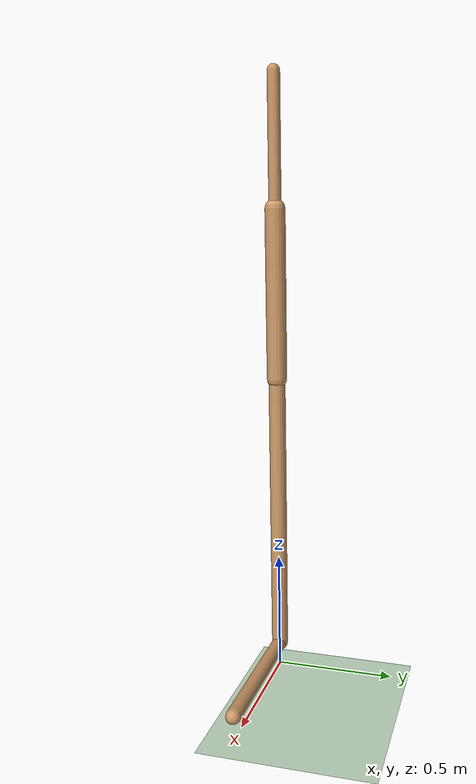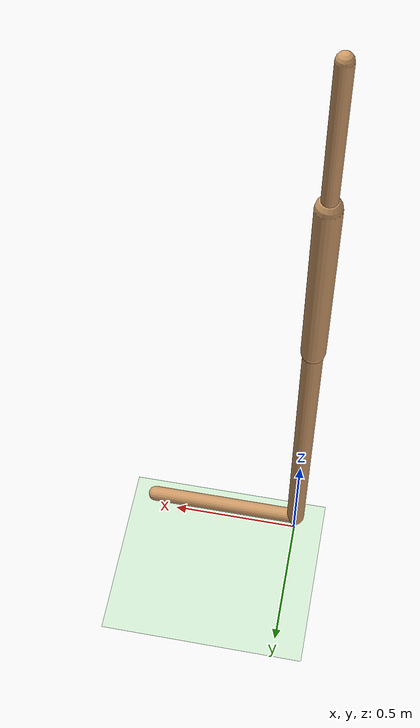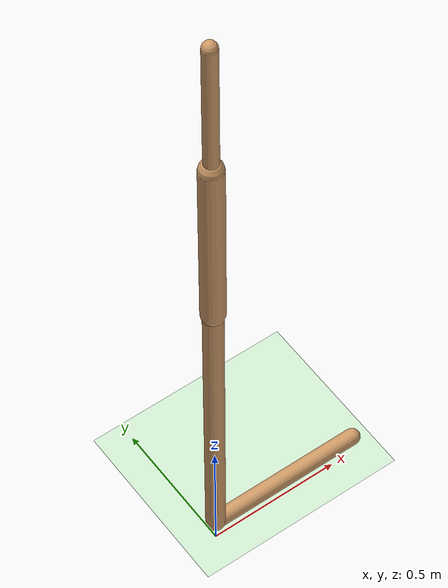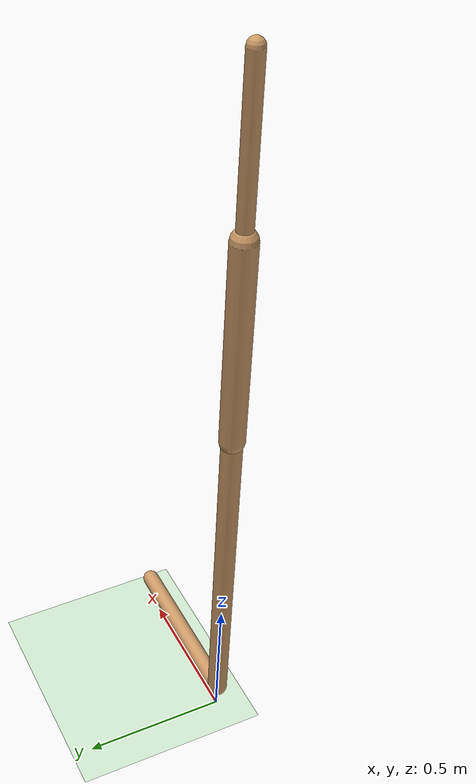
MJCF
<mujoco model="walker2d">
  <compiler angle="degree" inertiafromgeom="true" />
  <default>
    <joint armature="0.01" damping=".1" limited="true" />
    <geom conaffinity="0" condim="3" contype="1" density="1000" friction=".7 .1 .1" rgba="0.8 0.6 .4 1" />
  </default>
  <option integrator="RK4" timestep="0.002" />
  <worldbody>
    <light cutoff="100" diffuse="1 1 1" dir="-0 0 -1.3" directional="true" exponent="1" pos="0 0 1.3" specular=".1 .1 .1" />
    <geom conaffinity="1" condim="3" name="floor" pos="0 0 0" rgba="0.8 0.9 0.8 1" size="40 40 40" type="plane" material="MatPlane" />
    <body name="torso" pos="0 0 2.2475917398929597">
      <camera name="track" mode="trackcom" pos="0 -5 -1.25" xyaxes="1 0 0 0 0 1" />
      <joint armature="0" axis="1 0 0" damping="0" limited="false" name="rootx" pos="0 0 -1.25" stiffness="0" type="slide" />
      <joint armature="0" axis="0 0 1" damping="0" limited="false" name="rootz" pos="0 0 -1.25" ref="1.25" stiffness="0" type="slide" />
      <joint armature="0" axis="0 1 0" damping="0" limited="false" name="rooty" pos="0 0 0" stiffness="0" type="hinge" />
      <geom friction="0.9" name="torso_geom" size="0.025464992970228195 0.26182910799980164" type="capsule" />
      <body name="thigh" pos="0 0 -0.26182910799980164">
        <joint axis="0 -1 0" name="thigh_joint" pos="0 0 0" range="-150 0" type="hinge" />
        <site name="torso_thigh_site" pos="0 0 0" size="0.01" type="sphere" rgba="1 0 0 0.5" />
        <geom friction="0.9" pos="0 0 -0.3463514745235443" name="thigh_geom" size="0.041600026190280914 0.3463514745235443" type="capsule" />
        <body name="leg" pos="0 0 -1.2892327904701233">
          <joint axis="0 -1 0" name="leg_joint" pos="0 0 0.5965298414230347" range="-150 0" type="hinge" />
          <site name="thigh_leg_site" pos="0 0 0.25" size="0.01" type="sphere" rgba="1 0 0 0.5" />
          <geom friction="0.9" name="leg_geom" size="0.034702181816101074 0.5965298414230347" type="capsule" />
          <body name="foot" pos="0.5836220979690552 0 -0.6965298414230346">
            <joint axis="0 -1 0" name="foot_joint" pos="-0.5836220979690552 0 0.1" range="-45 45" type="hinge" />
            <site name="leg_foot_site" pos="-0.2 0 0.1" size="0.01" type="sphere" rgba="1 0 0 0.5" />
            <geom friction="0.9" pos="-0.2918110489845276 0 0.1" quat="0.70710678118654757 0 -0.70710678118654746 0" name="foot_geom" size="0.030295195057988167 0.2918110489845276" type="capsule" />
          </body>
        </body>
      </body>

      <body name="thigh_left" pos="0 0 -0.26182910799980164">
        <joint axis="0 -1 0" name="thigh_left_joint" pos="0 0 0" range="-150 0" type="hinge" />
        <site name="torso_thigh_left_site" pos="0 0 0" size="0.01" type="sphere" rgba="1 0 0 0.5" />
        <geom friction="0.9" name="thigh_left_geom" rgba=".7 .3 .6 1" size="0.041600026190280914 0.3463514745235443" pos="0 0 -0.3463514745235443" type="capsule" />
        <body name="leg_left" pos="0 0 -1.2892327904701233">
          <joint axis="0 -1 0" name="leg_left_joint" pos="0 0 0.5965298414230347" range="-150 0" type="hinge" />
          <site name="thigh_leg_left_site" pos="0 0 0.25" size="0.01" type="sphere" rgba="1 0 0 0.5" />
          <geom friction="0.9" name="leg_left_geom" rgba=".7 .3 .6 1" size="0.034702181816101074 0.5965298414230347" type="capsule" />
          <body name="foot_left" pos="0.5836220979690552 0 -0.6965298414230346">
            <joint axis="0 -1 0" name="foot_left_joint" pos="-0.5836220979690552 0 0.1" range="-45 45" type="hinge" />
            <site name="leg_foot_left_site" pos="-0.2 0 0.1" size="0.01" type="sphere" rgba="1 0 0 0.5" />
            <geom friction="1.9" name="foot_left_geom" rgba=".7 .3 .6 1" size="0.030295195057988167 0.2918110489845276" pos="-0.2918110489845276 0 0.1" type="capsule" quat="0.70710678118654757 0 -0.70710678118654746 0" />
          </body>
        </body>
      </body>
    </body>
  </worldbody>
  <actuator>

    <motor ctrllimited="true" ctrlrange="-1.0 1.0" gear="106.55693554887662" joint="thigh_joint" />
    <motor ctrllimited="true" ctrlrange="-1.0 1.0" gear="179.59148624414576" joint="leg_joint" />
    <motor ctrllimited="true" ctrlrange="-1.0 1.0" gear="74.39551203004301" joint="foot_joint" />
    <motor ctrllimited="true" ctrlrange="-1.0 1.0" gear="106.55693554887662" joint="thigh_left_joint" />
    <motor ctrllimited="true" ctrlrange="-1.0 1.0" gear="179.59148624414576" joint="leg_left_joint" />
    <motor ctrllimited="true" ctrlrange="-1.0 1.0" gear="74.39551203004301" joint="foot_left_joint" />

  </actuator>
    <asset>
        <texture type="skybox" builtin="gradient" rgb1=".4 .5 .6" rgb2="0 0 0" width="100" height="100" />
        <texture builtin="flat" height="1278" mark="cross" markrgb="1 1 1" name="texgeom" random="0.01" rgb1="0.8 0.6 0.4" rgb2="0.8 0.6 0.4" type="cube" width="127" />
        <texture builtin="checker" height="100" name="texplane" rgb1="0 0 0" rgb2="0.8 0.8 0.8" type="2d" width="100" />
        <material name="MatPlane" reflectance="0.5" shininess="1" specular="1" texrepeat="60 60" texture="texplane" />
        <material name="geom" texture="texgeom" texuniform="true" />
    </asset>

  <sensor>
    <force site="torso_thigh_site" name="torso_thigh_sensor" />
    <force site="thigh_leg_site" name="thigh_leg_sensor" />
    <force site="leg_foot_site" name="leg_foot_sensor" />
    <force site="torso_thigh_left_site" name="torso_thigh_left_sensor" />
    <force site="thigh_leg_left_site" name="thigh_leg_left_sensor" />
    <force site="leg_foot_left_site" name="leg_foot_left_sensor" />
  </sensor>
</mujoco>
